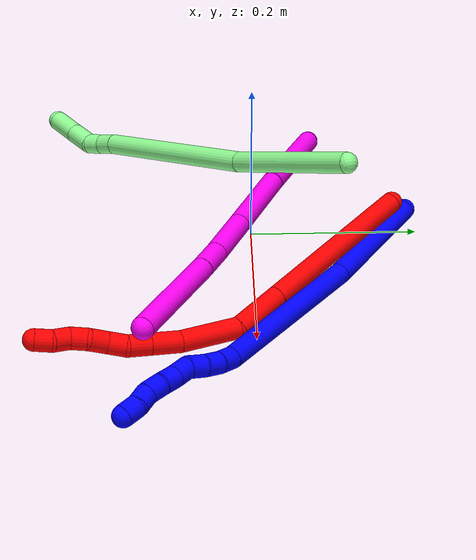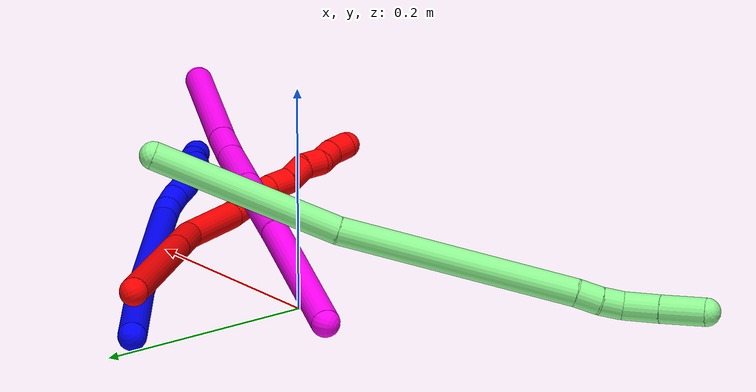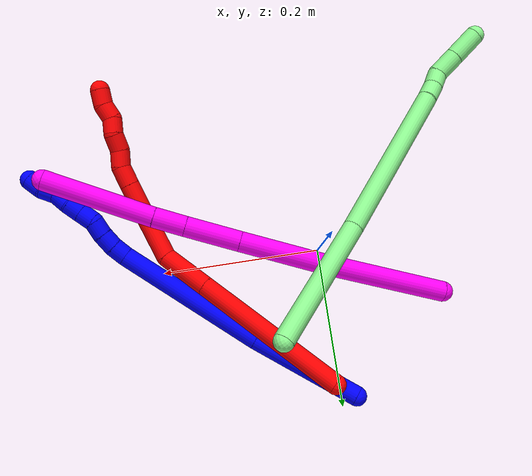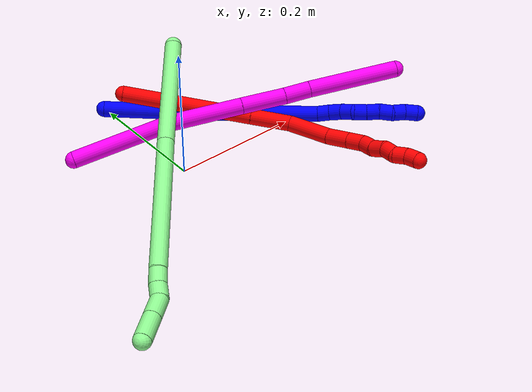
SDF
<sdf version="1.7">
 <world name="default">
  <model name="1">
   <static>0</static>
   <link name="1">
    <collision name="collision-cylinder-e_1_1_4">
     <pose>0.045166 -0.015565 0.052991 0.2857 0.68549 0.102555</pose>
     <geometry><cylinder><radius>0.0125</radius><length>0.142691</length></cylinder></geometry>
     <surface>
      <friction><ode><mu>1.16</mu><mu2>1.16</mu2><slip1>0</slip1><slip2>0</slip2></ode></friction>
      <contact><ode><kp>1e+06</kp><kd>1</kd><max_vel>0</max_vel><min_depth>0.001</min_depth></ode></contact>
     </surface>
    </collision>
    <visual name="visual-cylinder-e_1_1_4">
     <pose>0.045166 -0.015565 0.052991 0.2857 0.68549 0.102555</pose>
     <geometry><cylinder><radius>0.0125</radius><length>0.142691</length></cylinder></geometry>
     <material><ambient>0 0 1 1</ambient></material>
    </visual>
    <collision name="collision-cylinder-e_2_4_5">
     <pose>0.158016 -0.045309 0.176106 0.199503 0.75769 0.079639</pose>
     <geometry><cylinder><radius>0.0125</radius><length>0.196974</length></cylinder></geometry>
     <surface>
      <friction><ode><mu>1.16</mu><mu2>1.16</mu2><slip1>0</slip1><slip2>0</slip2></ode></friction>
      <contact><ode><kp>1e+06</kp><kd>1</kd><max_vel>0</max_vel><min_depth>0.001</min_depth></ode></contact>
     </surface>
    </collision>
    <visual name="visual-cylinder-e_2_4_5">
     <pose>0.158016 -0.045309 0.176106 0.199503 0.75769 0.079639</pose>
     <geometry><cylinder><radius>0.0125</radius><length>0.196974</length></cylinder></geometry>
     <material><ambient>0 0 1 1</ambient></material>
    </visual>
    <collision name="collision-cylinder-e_3_5_6">
     <pose>0.233965 -0.059517 0.252031 0.004991 0.958743 0.002594</pose>
     <geometry><cylinder><radius>0.0125</radius><length>0.020195</length></cylinder></geometry>
     <surface>
      <friction><ode><mu>1.16</mu><mu2>1.16</mu2><slip1>0</slip1><slip2>0</slip2></ode></friction>
      <contact><ode><kp>1e+06</kp><kd>1</kd><max_vel>0</max_vel><min_depth>0.001</min_depth></ode></contact>
     </surface>
    </collision>
    <visual name="visual-cylinder-e_3_5_6">
     <pose>0.233965 -0.059517 0.252031 0.004991 0.958743 0.002594</pose>
     <geometry><cylinder><radius>0.0125</radius><length>0.020195</length></cylinder></geometry>
     <material><ambient>0 0 1 1</ambient></material>
    </visual>
    <collision name="collision-cylinder-e_4_6_7">
     <pose>0.250354 -0.057813 0.263498 -0.296875 0.940717 -0.151763</pose>
     <geometry><cylinder><radius>0.0125</radius><length>0.020111</length></cylinder></geometry>
     <surface>
      <friction><ode><mu>1.16</mu><mu2>1.16</mu2><slip1>0</slip1><slip2>0</slip2></ode></friction>
      <contact><ode><kp>1e+06</kp><kd>1</kd><max_vel>0</max_vel><min_depth>0.001</min_depth></ode></contact>
     </surface>
    </collision>
    <visual name="visual-cylinder-e_4_6_7">
     <pose>0.250354 -0.057813 0.263498 -0.296875 0.940717 -0.151763</pose>
     <geometry><cylinder><radius>0.0125</radius><length>0.020111</length></cylinder></geometry>
     <material><ambient>0 0 1 1</ambient></material>
    </visual>
    <collision name="collision-cylinder-e_5_7_8">
     <pose>0.266189 -0.052908 0.274711 -0.519428 0.878803 -0.248512</pose>
     <geometry><cylinder><radius>0.0125</radius><length>0.020029</length></cylinder></geometry>
     <surface>
      <friction><ode><mu>1.16</mu><mu2>1.16</mu2><slip1>0</slip1><slip2>0</slip2></ode></friction>
      <contact><ode><kp>1e+06</kp><kd>1</kd><max_vel>0</max_vel><min_depth>0.001</min_depth></ode></contact>
     </surface>
    </collision>
    <visual name="visual-cylinder-e_5_7_8">
     <pose>0.266189 -0.052908 0.274711 -0.519428 0.878803 -0.248512</pose>
     <geometry><cylinder><radius>0.0125</radius><length>0.020029</length></cylinder></geometry>
     <material><ambient>0 0 1 1</ambient></material>
    </visual>
    <collision name="collision-cylinder-e_6_8_9">
     <pose>0.28076 -0.05088 0.287444 0.157911 0.755921 0.062809</pose>
     <geometry><cylinder><radius>0.0125</radius><length>0.02</length></cylinder></geometry>
     <surface>
      <friction><ode><mu>1.16</mu><mu2>1.16</mu2><slip1>0</slip1><slip2>0</slip2></ode></friction>
      <contact><ode><kp>1e+06</kp><kd>1</kd><max_vel>0</max_vel><min_depth>0.001</min_depth></ode></contact>
     </surface>
    </collision>
    <visual name="visual-cylinder-e_6_8_9">
     <pose>0.28076 -0.05088 0.287444 0.157911 0.755921 0.062809</pose>
     <geometry><cylinder><radius>0.0125</radius><length>0.02</length></cylinder></geometry>
     <material><ambient>0 0 1 1</ambient></material>
    </visual>
    <collision name="collision-cylinder-e_7_9_10">
     <pose>0.295263 -0.052781 0.301034 0.117565 0.869972 0.054678</pose>
     <geometry><cylinder><radius>0.0125</radius><length>0.02</length></cylinder></geometry>
     <surface>
      <friction><ode><mu>1.16</mu><mu2>1.16</mu2><slip1>0</slip1><slip2>0</slip2></ode></friction>
      <contact><ode><kp>1e+06</kp><kd>1</kd><max_vel>0</max_vel><min_depth>0.001</min_depth></ode></contact>
     </surface>
    </collision>
    <visual name="visual-cylinder-e_7_9_10">
     <pose>0.295263 -0.052781 0.301034 0.117565 0.869972 0.054678</pose>
     <geometry><cylinder><radius>0.0125</radius><length>0.02</length></cylinder></geometry>
     <material><ambient>0 0 1 1</ambient></material>
    </visual>
    <collision name="collision-cylinder-e_8_10_11">
     <pose>0.309321 -0.053836 0.315103 0.03903 0.696447 0.01417</pose>
     <geometry><cylinder><radius>0.0125</radius><length>0.02</length></cylinder></geometry>
     <surface>
      <friction><ode><mu>1.16</mu><mu2>1.16</mu2><slip1>0</slip1><slip2>0</slip2></ode></friction>
      <contact><ode><kp>1e+06</kp><kd>1</kd><max_vel>0</max_vel><min_depth>0.001</min_depth></ode></contact>
     </surface>
    </collision>
    <visual name="visual-cylinder-e_8_10_11">
     <pose>0.309321 -0.053836 0.315103 0.03903 0.696447 0.01417</pose>
     <geometry><cylinder><radius>0.0125</radius><length>0.02</length></cylinder></geometry>
     <material><ambient>0 0 1 1</ambient></material>
    </visual>
    <collision name="collision-cylinder-e_9_11_12">
     <pose>0.322276 -0.05781 0.329381 0.507198 0.712908 0.19242</pose>
     <geometry><cylinder><radius>0.0125</radius><length>0.02</length></cylinder></geometry>
     <surface>
      <friction><ode><mu>1.16</mu><mu2>1.16</mu2><slip1>0</slip1><slip2>0</slip2></ode></friction>
      <contact><ode><kp>1e+06</kp><kd>1</kd><max_vel>0</max_vel><min_depth>0.001</min_depth></ode></contact>
     </surface>
    </collision>
    <visual name="visual-cylinder-e_9_11_12">
     <pose>0.322276 -0.05781 0.329381 0.507198 0.712908 0.19242</pose>
     <geometry><cylinder><radius>0.0125</radius><length>0.02</length></cylinder></geometry>
     <material><ambient>0 0 1 1</ambient></material>
    </visual>
    <collision name="collision-cylinder-e_10_12_2">
     <pose>0.335222 -0.062353 0.343623 0.113301 0.695223 0.04109</pose>
     <geometry><cylinder><radius>0.0125</radius><length>0.02</length></cylinder></geometry>
     <surface>
      <friction><ode><mu>1.16</mu><mu2>1.16</mu2><slip1>0</slip1><slip2>0</slip2></ode></friction>
      <contact><ode><kp>1e+06</kp><kd>1</kd><max_vel>0</max_vel><min_depth>0.001</min_depth></ode></contact>
     </surface>
    </collision>
    <visual name="visual-cylinder-e_10_12_2">
     <pose>0.335222 -0.062353 0.343623 0.113301 0.695223 0.04109</pose>
     <geometry><cylinder><radius>0.0125</radius><length>0.02</length></cylinder></geometry>
     <material><ambient>0 0 1 1</ambient></material>
    </visual>
    <collision name="collision-sphere-2">
     <pose>0.341628 -0.063221 0.351253 0 -0 0</pose>
     <geometry><sphere><radius>0.0125</radius></sphere></geometry>
     <surface>
      <friction><ode><mu>1.16</mu><mu2>1.16</mu2><slip1>0</slip1><slip2>0</slip2></ode></friction>
      <contact><ode><kp>1e+06</kp><kd>1</kd><max_vel>0</max_vel><min_depth>0.001</min_depth></ode></contact>
     </surface>
    </collision>
    <visual name="visual-sphere-2">
     <pose>0.341628 -0.063221 0.351253 0 -0 0</pose>
     <geometry><sphere><radius>0.0125</radius></sphere></geometry>
     <material><ambient>0 0 1 1</ambient></material>
    </visual>
    <collision name="collision-sphere-12">
     <pose>0.328816 -0.061484 0.335993 0 -0 0</pose>
     <geometry><sphere><radius>0.0125</radius></sphere></geometry>
     <surface>
      <friction><ode><mu>1.16</mu><mu2>1.16</mu2><slip1>0</slip1><slip2>0</slip2></ode></friction>
      <contact><ode><kp>1e+06</kp><kd>1</kd><max_vel>0</max_vel><min_depth>0.001</min_depth></ode></contact>
     </surface>
    </collision>
    <visual name="visual-sphere-12">
     <pose>0.328816 -0.061484 0.335993 0 -0 0</pose>
     <geometry><sphere><radius>0.0125</radius></sphere></geometry>
     <material><ambient>0 0 1 1</ambient></material>
    </visual>
    <collision name="collision-sphere-11">
     <pose>0.315736 -0.054136 0.322769 0 -0 0</pose>
     <geometry><sphere><radius>0.0125</radius></sphere></geometry>
     <surface>
      <friction><ode><mu>1.16</mu><mu2>1.16</mu2><slip1>0</slip1><slip2>0</slip2></ode></friction>
      <contact><ode><kp>1e+06</kp><kd>1</kd><max_vel>0</max_vel><min_depth>0.001</min_depth></ode></contact>
     </surface>
    </collision>
    <visual name="visual-sphere-11">
     <pose>0.315736 -0.054136 0.322769 0 -0 0</pose>
     <geometry><sphere><radius>0.0125</radius></sphere></geometry>
     <material><ambient>0 0 1 1</ambient></material>
    </visual>
    <collision name="collision-sphere-10">
     <pose>0.302906 -0.053537 0.307438 0 -0 0</pose>
     <geometry><sphere><radius>0.0125</radius></sphere></geometry>
     <surface>
      <friction><ode><mu>1.16</mu><mu2>1.16</mu2><slip1>0</slip1><slip2>0</slip2></ode></friction>
      <contact><ode><kp>1e+06</kp><kd>1</kd><max_vel>0</max_vel><min_depth>0.001</min_depth></ode></contact>
     </surface>
    </collision>
    <visual name="visual-sphere-10">
     <pose>0.302906 -0.053537 0.307438 0 -0 0</pose>
     <geometry><sphere><radius>0.0125</radius></sphere></geometry>
     <material><ambient>0 0 1 1</ambient></material>
    </visual>
    <collision name="collision-sphere-9">
     <pose>0.287619 -0.052024 0.29463 0 -0 0</pose>
     <geometry><sphere><radius>0.0125</radius></sphere></geometry>
     <surface>
      <friction><ode><mu>1.16</mu><mu2>1.16</mu2><slip1>0</slip1><slip2>0</slip2></ode></friction>
      <contact><ode><kp>1e+06</kp><kd>1</kd><max_vel>0</max_vel><min_depth>0.001</min_depth></ode></contact>
     </surface>
    </collision>
    <visual name="visual-sphere-9">
     <pose>0.287619 -0.052024 0.29463 0 -0 0</pose>
     <geometry><sphere><radius>0.0125</radius></sphere></geometry>
     <material><ambient>0 0 1 1</ambient></material>
    </visual>
    <collision name="collision-sphere-4">
     <pose>0.090331 -0.03113 0.105981 0 -0 0</pose>
     <geometry><sphere><radius>0.0125</radius></sphere></geometry>
     <surface>
      <friction><ode><mu>1.16</mu><mu2>1.16</mu2><slip1>0</slip1><slip2>0</slip2></ode></friction>
      <contact><ode><kp>1e+06</kp><kd>1</kd><max_vel>0</max_vel><min_depth>0.001</min_depth></ode></contact>
     </surface>
    </collision>
    <visual name="visual-sphere-4">
     <pose>0.090331 -0.03113 0.105981 0 -0 0</pose>
     <geometry><sphere><radius>0.0125</radius></sphere></geometry>
     <material><ambient>0 0 1 1</ambient></material>
    </visual>
    <collision name="collision-sphere-1">
     <geometry><sphere><radius>0.0125</radius></sphere></geometry>
     <surface>
      <friction><ode><mu>1.16</mu><mu2>1.16</mu2><slip1>0</slip1><slip2>0</slip2></ode></friction>
      <contact><ode><kp>1e+06</kp><kd>1</kd><max_vel>0</max_vel><min_depth>0.001</min_depth></ode></contact>
     </surface>
    </collision>
    <visual name="visual-sphere-1">
     <geometry><sphere><radius>0.0125</radius></sphere></geometry>
     <material><ambient>0 0 1 1</ambient></material>
    </visual>
    <collision name="collision-sphere-8">
     <pose>0.2739 -0.049736 0.280258 0 -0 0</pose>
     <geometry><sphere><radius>0.0125</radius></sphere></geometry>
     <surface>
      <friction><ode><mu>1.16</mu><mu2>1.16</mu2><slip1>0</slip1><slip2>0</slip2></ode></friction>
      <contact><ode><kp>1e+06</kp><kd>1</kd><max_vel>0</max_vel><min_depth>0.001</min_depth></ode></contact>
     </surface>
    </collision>
    <visual name="visual-sphere-8">
     <pose>0.2739 -0.049736 0.280258 0 -0 0</pose>
     <geometry><sphere><radius>0.0125</radius></sphere></geometry>
     <material><ambient>0 0 1 1</ambient></material>
    </visual>
    <collision name="collision-sphere-5">
     <pose>0.225701 -0.059488 0.24623 0 -0 0</pose>
     <geometry><sphere><radius>0.0125</radius></sphere></geometry>
     <surface>
      <friction><ode><mu>1.16</mu><mu2>1.16</mu2><slip1>0</slip1><slip2>0</slip2></ode></friction>
      <contact><ode><kp>1e+06</kp><kd>1</kd><max_vel>0</max_vel><min_depth>0.001</min_depth></ode></contact>
     </surface>
    </collision>
    <visual name="visual-sphere-5">
     <pose>0.225701 -0.059488 0.24623 0 -0 0</pose>
     <geometry><sphere><radius>0.0125</radius></sphere></geometry>
     <material><ambient>0 0 1 1</ambient></material>
    </visual>
    <collision name="collision-sphere-6">
     <pose>0.24223 -0.059546 0.257833 0 -0 0</pose>
     <geometry><sphere><radius>0.0125</radius></sphere></geometry>
     <surface>
      <friction><ode><mu>1.16</mu><mu2>1.16</mu2><slip1>0</slip1><slip2>0</slip2></ode></friction>
      <contact><ode><kp>1e+06</kp><kd>1</kd><max_vel>0</max_vel><min_depth>0.001</min_depth></ode></contact>
     </surface>
    </collision>
    <visual name="visual-sphere-6">
     <pose>0.24223 -0.059546 0.257833 0 -0 0</pose>
     <geometry><sphere><radius>0.0125</radius></sphere></geometry>
     <material><ambient>0 0 1 1</ambient></material>
    </visual>
    <collision name="collision-sphere-7">
     <pose>0.258479 -0.056079 0.269164 0 -0 0</pose>
     <geometry><sphere><radius>0.0125</radius></sphere></geometry>
     <surface>
      <friction><ode><mu>1.16</mu><mu2>1.16</mu2><slip1>0</slip1><slip2>0</slip2></ode></friction>
      <contact><ode><kp>1e+06</kp><kd>1</kd><max_vel>0</max_vel><min_depth>0.001</min_depth></ode></contact>
     </surface>
    </collision>
    <visual name="visual-sphere-7">
     <pose>0.258479 -0.056079 0.269164 0 -0 0</pose>
     <geometry><sphere><radius>0.0125</radius></sphere></geometry>
     <material><ambient>0 0 1 1</ambient></material>
    </visual>
    <inertial>
     <pose>0.167036 -0.040246 0.179345 0 -0 0</pose>
     <mass>0.5</mass>
     <inertia>
      <ixx>0.000749</ixx>
      <ixy>0</ixy>
      <ixz>0</ixz>
      <iyy>0.000941</iyy>
      <iyz>0</iyz>
      <izz>-0.000434</izz>
     </inertia>
    </inertial>
   </link>
   <pose>-0.017171 0.187613 0.022142 2.81825 -0.810275 -0.626008</pose>
  </model>
  <model name="2">
   <static>0</static>
   <link name="2">
    <collision name="collision-cylinder-e_1_1_4">
     <pose>0.075591 -0.065773 0.015669 1.33692 0.841052 0.679008</pose>
     <geometry><cylinder><radius>0.0125</radius><length>0.202836</length></cylinder></geometry>
     <surface>
      <friction><ode><mu>1.16</mu><mu2>1.16</mu2><slip1>0</slip1><slip2>0</slip2></ode></friction>
      <contact><ode><kp>1e+06</kp><kd>1</kd><max_vel>0</max_vel><min_depth>0.001</min_depth></ode></contact>
     </surface>
    </collision>
    <visual name="visual-cylinder-e_1_1_4">
     <pose>0.075591 -0.065773 0.015669 1.33692 0.841052 0.679008</pose>
     <geometry><cylinder><radius>0.0125</radius><length>0.202836</length></cylinder></geometry>
     <material><ambient>1 0 0 1</ambient></material>
    </visual>
    <collision name="collision-cylinder-e_2_4_5">
     <pose>0.174928 -0.152079 0.036251 1.336 0.843997 0.680898</pose>
     <geometry><cylinder><radius>0.0125</radius><length>0.063547</length></cylinder></geometry>
     <surface>
      <friction><ode><mu>1.16</mu><mu2>1.16</mu2><slip1>0</slip1><slip2>0</slip2></ode></friction>
      <contact><ode><kp>1e+06</kp><kd>1</kd><max_vel>0</max_vel><min_depth>0.001</min_depth></ode></contact>
     </surface>
    </collision>
    <visual name="visual-cylinder-e_2_4_5">
     <pose>0.174928 -0.152079 0.036251 1.336 0.843997 0.680898</pose>
     <geometry><cylinder><radius>0.0125</radius><length>0.063547</length></cylinder></geometry>
     <material><ambient>1 0 0 1</ambient></material>
    </visual>
    <collision name="collision-cylinder-e_3_5_6">
     <pose>0.21856 -0.192362 0.060948 0.784487 0.618344 0.262749</pose>
     <geometry><cylinder><radius>0.0125</radius><length>0.068614</length></cylinder></geometry>
     <surface>
      <friction><ode><mu>1.16</mu><mu2>1.16</mu2><slip1>0</slip1><slip2>0</slip2></ode></friction>
      <contact><ode><kp>1e+06</kp><kd>1</kd><max_vel>0</max_vel><min_depth>0.001</min_depth></ode></contact>
     </surface>
    </collision>
    <visual name="visual-cylinder-e_3_5_6">
     <pose>0.21856 -0.192362 0.060948 0.784487 0.618344 0.262749</pose>
     <geometry><cylinder><radius>0.0125</radius><length>0.068614</length></cylinder></geometry>
     <material><ambient>1 0 0 1</ambient></material>
    </visual>
    <collision name="collision-cylinder-e_4_6_7">
     <pose>0.249601 -0.219854 0.09238 0.586743 0.673185 0.210624</pose>
     <geometry><cylinder><radius>0.0125</radius><length>0.035779</length></cylinder></geometry>
     <surface>
      <friction><ode><mu>1.16</mu><mu2>1.16</mu2><slip1>0</slip1><slip2>0</slip2></ode></friction>
      <contact><ode><kp>1e+06</kp><kd>1</kd><max_vel>0</max_vel><min_depth>0.001</min_depth></ode></contact>
     </surface>
    </collision>
    <visual name="visual-cylinder-e_4_6_7">
     <pose>0.249601 -0.219854 0.09238 0.586743 0.673185 0.210624</pose>
     <geometry><cylinder><radius>0.0125</radius><length>0.035779</length></cylinder></geometry>
     <material><ambient>1 0 0 1</ambient></material>
    </visual>
    <collision name="collision-cylinder-e_5_7_8">
     <pose>0.268628 -0.233057 0.112299 0.583307 0.671339 0.208712</pose>
     <geometry><cylinder><radius>0.0125</radius><length>0.025314</length></cylinder></geometry>
     <surface>
      <friction><ode><mu>1.16</mu><mu2>1.16</mu2><slip1>0</slip1><slip2>0</slip2></ode></friction>
      <contact><ode><kp>1e+06</kp><kd>1</kd><max_vel>0</max_vel><min_depth>0.001</min_depth></ode></contact>
     </surface>
    </collision>
    <visual name="visual-cylinder-e_5_7_8">
     <pose>0.268628 -0.233057 0.112299 0.583307 0.671339 0.208712</pose>
     <geometry><cylinder><radius>0.0125</radius><length>0.025314</length></cylinder></geometry>
     <material><ambient>1 0 0 1</ambient></material>
    </visual>
    <collision name="collision-cylinder-e_6_8_9">
     <pose>0.27991 -0.242569 0.130148 0.400454 0.31675 0.064803</pose>
     <geometry><cylinder><radius>0.0125</radius><length>0.021889</length></cylinder></geometry>
     <surface>
      <friction><ode><mu>1.16</mu><mu2>1.16</mu2><slip1>0</slip1><slip2>0</slip2></ode></friction>
      <contact><ode><kp>1e+06</kp><kd>1</kd><max_vel>0</max_vel><min_depth>0.001</min_depth></ode></contact>
     </surface>
    </collision>
    <visual name="visual-cylinder-e_6_8_9">
     <pose>0.27991 -0.242569 0.130148 0.400454 0.31675 0.064803</pose>
     <geometry><cylinder><radius>0.0125</radius><length>0.021889</length></cylinder></geometry>
     <material><ambient>1 0 0 1</ambient></material>
    </visual>
    <collision name="collision-cylinder-e_7_9_10">
     <pose>0.2901 -0.24893 0.148033 0.270782 0.666492 0.09424</pose>
     <geometry><cylinder><radius>0.0125</radius><length>0.021938</length></cylinder></geometry>
     <surface>
      <friction><ode><mu>1.16</mu><mu2>1.16</mu2><slip1>0</slip1><slip2>0</slip2></ode></friction>
      <contact><ode><kp>1e+06</kp><kd>1</kd><max_vel>0</max_vel><min_depth>0.001</min_depth></ode></contact>
     </surface>
    </collision>
    <visual name="visual-cylinder-e_7_9_10">
     <pose>0.2901 -0.24893 0.148033 0.270782 0.666492 0.09424</pose>
     <geometry><cylinder><radius>0.0125</radius><length>0.021938</length></cylinder></geometry>
     <material><ambient>1 0 0 1</ambient></material>
    </visual>
    <collision name="collision-cylinder-e_8_10_11">
     <pose>0.299851 -0.255943 0.16466 0.514791 0.301192 0.079846</pose>
     <geometry><cylinder><radius>0.0125</radius><length>0.02002</length></cylinder></geometry>
     <surface>
      <friction><ode><mu>1.16</mu><mu2>1.16</mu2><slip1>0</slip1><slip2>0</slip2></ode></friction>
      <contact><ode><kp>1e+06</kp><kd>1</kd><max_vel>0</max_vel><min_depth>0.001</min_depth></ode></contact>
     </surface>
    </collision>
    <visual name="visual-cylinder-e_8_10_11">
     <pose>0.299851 -0.255943 0.16466 0.514791 0.301192 0.079846</pose>
     <geometry><cylinder><radius>0.0125</radius><length>0.02002</length></cylinder></geometry>
     <material><ambient>1 0 0 1</ambient></material>
    </visual>
    <collision name="collision-cylinder-e_9_11_12">
     <pose>0.309927 -0.264933 0.178573 0.65372 0.789804 0.280746</pose>
     <geometry><cylinder><radius>0.0125</radius><length>0.020014</length></cylinder></geometry>
     <surface>
      <friction><ode><mu>1.16</mu><mu2>1.16</mu2><slip1>0</slip1><slip2>0</slip2></ode></friction>
      <contact><ode><kp>1e+06</kp><kd>1</kd><max_vel>0</max_vel><min_depth>0.001</min_depth></ode></contact>
     </surface>
    </collision>
    <visual name="visual-cylinder-e_9_11_12">
     <pose>0.309927 -0.264933 0.178573 0.65372 0.789804 0.280746</pose>
     <geometry><cylinder><radius>0.0125</radius><length>0.020014</length></cylinder></geometry>
     <material><ambient>1 0 0 1</ambient></material>
    </visual>
    <collision name="collision-cylinder-e_10_12_2">
     <pose>0.321445 -0.273405 0.192134 0.483861 0.455605 0.114288</pose>
     <geometry><cylinder><radius>0.0125</radius><length>0.020049</length></cylinder></geometry>
     <surface>
      <friction><ode><mu>1.16</mu><mu2>1.16</mu2><slip1>0</slip1><slip2>0</slip2></ode></friction>
      <contact><ode><kp>1e+06</kp><kd>1</kd><max_vel>0</max_vel><min_depth>0.001</min_depth></ode></contact>
     </surface>
    </collision>
    <visual name="visual-cylinder-e_10_12_2">
     <pose>0.321445 -0.273405 0.192134 0.483861 0.455605 0.114288</pose>
     <geometry><cylinder><radius>0.0125</radius><length>0.020049</length></cylinder></geometry>
     <material><ambient>1 0 0 1</ambient></material>
    </visual>
    <collision name="collision-sphere-2">
     <pose>0.325856 -0.277593 0.200102 0 -0 0</pose>
     <geometry><sphere><radius>0.0125</radius></sphere></geometry>
     <surface>
      <friction><ode><mu>1.16</mu><mu2>1.16</mu2><slip1>0</slip1><slip2>0</slip2></ode></friction>
      <contact><ode><kp>1e+06</kp><kd>1</kd><max_vel>0</max_vel><min_depth>0.001</min_depth></ode></contact>
     </surface>
    </collision>
    <visual name="visual-sphere-2">
     <pose>0.325856 -0.277593 0.200102 0 -0 0</pose>
     <geometry><sphere><radius>0.0125</radius></sphere></geometry>
     <material><ambient>1 0 0 1</ambient></material>
    </visual>
    <collision name="collision-sphere-12">
     <pose>0.317034 -0.269218 0.184165 0 -0 0</pose>
     <geometry><sphere><radius>0.0125</radius></sphere></geometry>
     <surface>
      <friction><ode><mu>1.16</mu><mu2>1.16</mu2><slip1>0</slip1><slip2>0</slip2></ode></friction>
      <contact><ode><kp>1e+06</kp><kd>1</kd><max_vel>0</max_vel><min_depth>0.001</min_depth></ode></contact>
     </surface>
    </collision>
    <visual name="visual-sphere-12">
     <pose>0.317034 -0.269218 0.184165 0 -0 0</pose>
     <geometry><sphere><radius>0.0125</radius></sphere></geometry>
     <material><ambient>1 0 0 1</ambient></material>
    </visual>
    <collision name="collision-sphere-11">
     <pose>0.30282 -0.260649 0.172981 0 -0 0</pose>
     <geometry><sphere><radius>0.0125</radius></sphere></geometry>
     <surface>
      <friction><ode><mu>1.16</mu><mu2>1.16</mu2><slip1>0</slip1><slip2>0</slip2></ode></friction>
      <contact><ode><kp>1e+06</kp><kd>1</kd><max_vel>0</max_vel><min_depth>0.001</min_depth></ode></contact>
     </surface>
    </collision>
    <visual name="visual-sphere-11">
     <pose>0.30282 -0.260649 0.172981 0 -0 0</pose>
     <geometry><sphere><radius>0.0125</radius></sphere></geometry>
     <material><ambient>1 0 0 1</ambient></material>
    </visual>
    <collision name="collision-sphere-10">
     <pose>0.296881 -0.251236 0.15634 0 -0 0</pose>
     <geometry><sphere><radius>0.0125</radius></sphere></geometry>
     <surface>
      <friction><ode><mu>1.16</mu><mu2>1.16</mu2><slip1>0</slip1><slip2>0</slip2></ode></friction>
      <contact><ode><kp>1e+06</kp><kd>1</kd><max_vel>0</max_vel><min_depth>0.001</min_depth></ode></contact>
     </surface>
    </collision>
    <visual name="visual-sphere-10">
     <pose>0.296881 -0.251236 0.15634 0 -0 0</pose>
     <geometry><sphere><radius>0.0125</radius></sphere></geometry>
     <material><ambient>1 0 0 1</ambient></material>
    </visual>
    <collision name="collision-sphere-9">
     <pose>0.283319 -0.246624 0.139725 0 -0 0</pose>
     <geometry><sphere><radius>0.0125</radius></sphere></geometry>
     <surface>
      <friction><ode><mu>1.16</mu><mu2>1.16</mu2><slip1>0</slip1><slip2>0</slip2></ode></friction>
      <contact><ode><kp>1e+06</kp><kd>1</kd><max_vel>0</max_vel><min_depth>0.001</min_depth></ode></contact>
     </surface>
    </collision>
    <visual name="visual-sphere-9">
     <pose>0.283319 -0.246624 0.139725 0 -0 0</pose>
     <geometry><sphere><radius>0.0125</radius></sphere></geometry>
     <material><ambient>1 0 0 1</ambient></material>
    </visual>
    <collision name="collision-sphere-4">
     <pose>0.151183 -0.131545 0.031339 0 -0 0</pose>
     <geometry><sphere><radius>0.0125</radius></sphere></geometry>
     <surface>
      <friction><ode><mu>1.16</mu><mu2>1.16</mu2><slip1>0</slip1><slip2>0</slip2></ode></friction>
      <contact><ode><kp>1e+06</kp><kd>1</kd><max_vel>0</max_vel><min_depth>0.001</min_depth></ode></contact>
     </surface>
    </collision>
    <visual name="visual-sphere-4">
     <pose>0.151183 -0.131545 0.031339 0 -0 0</pose>
     <geometry><sphere><radius>0.0125</radius></sphere></geometry>
     <material><ambient>1 0 0 1</ambient></material>
    </visual>
    <collision name="collision-sphere-1">
     <geometry><sphere><radius>0.0125</radius></sphere></geometry>
     <surface>
      <friction><ode><mu>1.16</mu><mu2>1.16</mu2><slip1>0</slip1><slip2>0</slip2></ode></friction>
      <contact><ode><kp>1e+06</kp><kd>1</kd><max_vel>0</max_vel><min_depth>0.001</min_depth></ode></contact>
     </surface>
    </collision>
    <visual name="visual-sphere-1">
     <geometry><sphere><radius>0.0125</radius></sphere></geometry>
     <material><ambient>1 0 0 1</ambient></material>
    </visual>
    <collision name="collision-sphere-8">
     <pose>0.276501 -0.238515 0.12057 0 -0 0</pose>
     <geometry><sphere><radius>0.0125</radius></sphere></geometry>
     <surface>
      <friction><ode><mu>1.16</mu><mu2>1.16</mu2><slip1>0</slip1><slip2>0</slip2></ode></friction>
      <contact><ode><kp>1e+06</kp><kd>1</kd><max_vel>0</max_vel><min_depth>0.001</min_depth></ode></contact>
     </surface>
    </collision>
    <visual name="visual-sphere-8">
     <pose>0.276501 -0.238515 0.12057 0 -0 0</pose>
     <geometry><sphere><radius>0.0125</radius></sphere></geometry>
     <material><ambient>1 0 0 1</ambient></material>
    </visual>
    <collision name="collision-sphere-5">
     <pose>0.198672 -0.172613 0.041163 0 -0 0</pose>
     <geometry><sphere><radius>0.0125</radius></sphere></geometry>
     <surface>
      <friction><ode><mu>1.16</mu><mu2>1.16</mu2><slip1>0</slip1><slip2>0</slip2></ode></friction>
      <contact><ode><kp>1e+06</kp><kd>1</kd><max_vel>0</max_vel><min_depth>0.001</min_depth></ode></contact>
     </surface>
    </collision>
    <visual name="visual-sphere-5">
     <pose>0.198672 -0.172613 0.041163 0 -0 0</pose>
     <geometry><sphere><radius>0.0125</radius></sphere></geometry>
     <material><ambient>1 0 0 1</ambient></material>
    </visual>
    <collision name="collision-sphere-6">
     <pose>0.238447 -0.212111 0.080733 0 -0 0</pose>
     <geometry><sphere><radius>0.0125</radius></sphere></geometry>
     <surface>
      <friction><ode><mu>1.16</mu><mu2>1.16</mu2><slip1>0</slip1><slip2>0</slip2></ode></friction>
      <contact><ode><kp>1e+06</kp><kd>1</kd><max_vel>0</max_vel><min_depth>0.001</min_depth></ode></contact>
     </surface>
    </collision>
    <visual name="visual-sphere-6">
     <pose>0.238447 -0.212111 0.080733 0 -0 0</pose>
     <geometry><sphere><radius>0.0125</radius></sphere></geometry>
     <material><ambient>1 0 0 1</ambient></material>
    </visual>
    <collision name="collision-sphere-7">
     <pose>0.260754 -0.227598 0.104027 0 -0 0</pose>
     <geometry><sphere><radius>0.0125</radius></sphere></geometry>
     <surface>
      <friction><ode><mu>1.16</mu><mu2>1.16</mu2><slip1>0</slip1><slip2>0</slip2></ode></friction>
      <contact><ode><kp>1e+06</kp><kd>1</kd><max_vel>0</max_vel><min_depth>0.001</min_depth></ode></contact>
     </surface>
    </collision>
    <visual name="visual-sphere-7">
     <pose>0.260754 -0.227598 0.104027 0 -0 0</pose>
     <geometry><sphere><radius>0.0125</radius></sphere></geometry>
     <material><ambient>1 0 0 1</ambient></material>
    </visual>
    <inertial>
     <pose>0.176634 -0.153296 0.065261 0 -0 0</pose>
     <mass>0.5</mass>
     <inertia>
      <ixx>0.000751</ixx>
      <ixy>0</ixy>
      <ixz>0</ixz>
      <iyy>0.000791</iyy>
      <iyz>0</iyz>
      <izz>-5.7e-05</izz>
     </inertia>
    </inertial>
   </link>
   <pose>0.008252 0.167828 0.050389 1.13427 -0.449467 -0.360962</pose>
  </model>
  <model name="10">
   <static>0</static>
   <link name="10">
    <collision name="collision-cylinder-e_1_1_4">
     <pose>0.051419 0.005862 0.055477 -0.105281 0.744685 -0.041151</pose>
     <geometry><cylinder><radius>0.0125</radius><length>0.151735</length></cylinder></geometry>
     <surface>
      <friction><ode><mu>1.16</mu><mu2>1.16</mu2><slip1>0</slip1><slip2>0</slip2></ode></friction>
      <contact><ode><kp>1e+06</kp><kd>1</kd><max_vel>0</max_vel><min_depth>0.001</min_depth></ode></contact>
     </surface>
    </collision>
    <visual name="visual-cylinder-e_1_1_4">
     <pose>0.051419 0.005862 0.055477 -0.105281 0.744685 -0.041151</pose>
     <geometry><cylinder><radius>0.0125</radius><length>0.151735</length></cylinder></geometry>
     <material><ambient>1 0 0.964706 1</ambient></material>
    </visual>
    <collision name="collision-cylinder-e_2_4_5">
     <pose>0.139607 0.022602 0.148041 -0.285295 0.760472 -0.114683</pose>
     <geometry><cylinder><radius>0.0125</radius><length>0.106693</length></cylinder></geometry>
     <surface>
      <friction><ode><mu>1.16</mu><mu2>1.16</mu2><slip1>0</slip1><slip2>0</slip2></ode></friction>
      <contact><ode><kp>1e+06</kp><kd>1</kd><max_vel>0</max_vel><min_depth>0.001</min_depth></ode></contact>
     </surface>
    </collision>
    <visual name="visual-cylinder-e_2_4_5">
     <pose>0.139607 0.022602 0.148041 -0.285295 0.760472 -0.114683</pose>
     <geometry><cylinder><radius>0.0125</radius><length>0.106693</length></cylinder></geometry>
     <material><ambient>1 0 0.964706 1</ambient></material>
    </visual>
    <collision name="collision-cylinder-e_3_5_6">
     <pose>0.199641 0.040433 0.208251 -0.292115 0.766833 -0.118539</pose>
     <geometry><cylinder><radius>0.0125</radius><length>0.067058</length></cylinder></geometry>
     <surface>
      <friction><ode><mu>1.16</mu><mu2>1.16</mu2><slip1>0</slip1><slip2>0</slip2></ode></friction>
      <contact><ode><kp>1e+06</kp><kd>1</kd><max_vel>0</max_vel><min_depth>0.001</min_depth></ode></contact>
     </surface>
    </collision>
    <visual name="visual-cylinder-e_3_5_6">
     <pose>0.199641 0.040433 0.208251 -0.292115 0.766833 -0.118539</pose>
     <geometry><cylinder><radius>0.0125</radius><length>0.067058</length></cylinder></geometry>
     <material><ambient>1 0 0.964706 1</ambient></material>
    </visual>
    <collision name="collision-cylinder-e_4_6_7">
     <pose>0.236749 0.050439 0.244802 -0.223488 0.787977 -0.093231</pose>
     <geometry><cylinder><radius>0.0125</radius><length>0.039053</length></cylinder></geometry>
     <surface>
      <friction><ode><mu>1.16</mu><mu2>1.16</mu2><slip1>0</slip1><slip2>0</slip2></ode></friction>
      <contact><ode><kp>1e+06</kp><kd>1</kd><max_vel>0</max_vel><min_depth>0.001</min_depth></ode></contact>
     </surface>
    </collision>
    <visual name="visual-cylinder-e_4_6_7">
     <pose>0.236749 0.050439 0.244802 -0.223488 0.787977 -0.093231</pose>
     <geometry><cylinder><radius>0.0125</radius><length>0.039053</length></cylinder></geometry>
     <material><ambient>1 0 0.964706 1</ambient></material>
    </visual>
    <collision name="collision-cylinder-e_5_7_2">
     <pose>0.300439 0.065119 0.302587 -0.256396 0.827096 -0.113021</pose>
     <geometry><cylinder><radius>0.0125</radius><length>0.13546</length></cylinder></geometry>
     <surface>
      <friction><ode><mu>1.16</mu><mu2>1.16</mu2><slip1>0</slip1><slip2>0</slip2></ode></friction>
      <contact><ode><kp>1e+06</kp><kd>1</kd><max_vel>0</max_vel><min_depth>0.001</min_depth></ode></contact>
     </surface>
    </collision>
    <visual name="visual-cylinder-e_5_7_2">
     <pose>0.300439 0.065119 0.302587 -0.256396 0.827096 -0.113021</pose>
     <geometry><cylinder><radius>0.0125</radius><length>0.13546</length></cylinder></geometry>
     <material><ambient>1 0 0.964706 1</ambient></material>
    </visual>
    <collision name="collision-sphere-2">
     <pose>0.350286 0.076748 0.346942 0 -0 0</pose>
     <geometry><sphere><radius>0.0125</radius></sphere></geometry>
     <surface>
      <friction><ode><mu>1.16</mu><mu2>1.16</mu2><slip1>0</slip1><slip2>0</slip2></ode></friction>
      <contact><ode><kp>1e+06</kp><kd>1</kd><max_vel>0</max_vel><min_depth>0.001</min_depth></ode></contact>
     </surface>
    </collision>
    <visual name="visual-sphere-2">
     <pose>0.350286 0.076748 0.346942 0 -0 0</pose>
     <geometry><sphere><radius>0.0125</radius></sphere></geometry>
     <material><ambient>1 0 0.964706 1</ambient></material>
    </visual>
    <collision name="collision-sphere-7">
     <pose>0.250591 0.053491 0.258231 0 -0 0</pose>
     <geometry><sphere><radius>0.0125</radius></sphere></geometry>
     <surface>
      <friction><ode><mu>1.16</mu><mu2>1.16</mu2><slip1>0</slip1><slip2>0</slip2></ode></friction>
      <contact><ode><kp>1e+06</kp><kd>1</kd><max_vel>0</max_vel><min_depth>0.001</min_depth></ode></contact>
     </surface>
    </collision>
    <visual name="visual-sphere-7">
     <pose>0.250591 0.053491 0.258231 0 -0 0</pose>
     <geometry><sphere><radius>0.0125</radius></sphere></geometry>
     <material><ambient>1 0 0.964706 1</ambient></material>
    </visual>
    <collision name="collision-sphere-6">
     <pose>0.222906 0.047386 0.231373 0 -0 0</pose>
     <geometry><sphere><radius>0.0125</radius></sphere></geometry>
     <surface>
      <friction><ode><mu>1.16</mu><mu2>1.16</mu2><slip1>0</slip1><slip2>0</slip2></ode></friction>
      <contact><ode><kp>1e+06</kp><kd>1</kd><max_vel>0</max_vel><min_depth>0.001</min_depth></ode></contact>
     </surface>
    </collision>
    <visual name="visual-sphere-6">
     <pose>0.222906 0.047386 0.231373 0 -0 0</pose>
     <geometry><sphere><radius>0.0125</radius></sphere></geometry>
     <material><ambient>1 0 0.964706 1</ambient></material>
    </visual>
    <collision name="collision-sphere-5">
     <pose>0.176377 0.03348 0.185129 0 -0 0</pose>
     <geometry><sphere><radius>0.0125</radius></sphere></geometry>
     <surface>
      <friction><ode><mu>1.16</mu><mu2>1.16</mu2><slip1>0</slip1><slip2>0</slip2></ode></friction>
      <contact><ode><kp>1e+06</kp><kd>1</kd><max_vel>0</max_vel><min_depth>0.001</min_depth></ode></contact>
     </surface>
    </collision>
    <visual name="visual-sphere-5">
     <pose>0.176377 0.03348 0.185129 0 -0 0</pose>
     <geometry><sphere><radius>0.0125</radius></sphere></geometry>
     <material><ambient>1 0 0.964706 1</ambient></material>
    </visual>
    <collision name="collision-sphere-1">
     <geometry><sphere><radius>0.0125</radius></sphere></geometry>
     <surface>
      <friction><ode><mu>1.16</mu><mu2>1.16</mu2><slip1>0</slip1><slip2>0</slip2></ode></friction>
      <contact><ode><kp>1e+06</kp><kd>1</kd><max_vel>0</max_vel><min_depth>0.001</min_depth></ode></contact>
     </surface>
    </collision>
    <visual name="visual-sphere-1">
     <geometry><sphere><radius>0.0125</radius></sphere></geometry>
     <material><ambient>1 0 0.964706 1</ambient></material>
    </visual>
    <collision name="collision-sphere-4">
     <pose>0.102837 0.011725 0.110954 0 -0 0</pose>
     <geometry><sphere><radius>0.0125</radius></sphere></geometry>
     <surface>
      <friction><ode><mu>1.16</mu><mu2>1.16</mu2><slip1>0</slip1><slip2>0</slip2></ode></friction>
      <contact><ode><kp>1e+06</kp><kd>1</kd><max_vel>0</max_vel><min_depth>0.001</min_depth></ode></contact>
     </surface>
    </collision>
    <visual name="visual-sphere-4">
     <pose>0.102837 0.011725 0.110954 0 -0 0</pose>
     <geometry><sphere><radius>0.0125</radius></sphere></geometry>
     <material><ambient>1 0 0.964706 1</ambient></material>
    </visual>
    <inertial>
     <pose>0.172056 0.033607 0.177453 0 -0 0</pose>
     <mass>0.5</mass>
     <inertia>
      <ixx>0.000452</ixx>
      <ixy>0</ixy>
      <ixz>0</ixz>
      <iyy>0.00061</iyy>
      <iyz>0</iyz>
      <izz>-0.000515</izz>
     </inertia>
    </inertial>
   </link>
   <pose>-0.139776 0.076717 0.044705 -1.44004 -0.279329 -1.20662</pose>
  </model>
  <model name="13">
   <static>0</static>
   <link name="13">
    <collision name="collision-cylinder-e_1_1_4">
     <pose>-0.057307 -0.049759 0.039636 0.898158 -0.733271 -0.365972</pose>
     <geometry><cylinder><radius>0.0125</radius><length>0.171244</length></cylinder></geometry>
     <surface>
      <friction><ode><mu>1.16</mu><mu2>1.16</mu2><slip1>0</slip1><slip2>0</slip2></ode></friction>
      <contact><ode><kp>1e+06</kp><kd>1</kd><max_vel>0</max_vel><min_depth>0.001</min_depth></ode></contact>
     </surface>
    </collision>
    <visual name="visual-cylinder-e_1_1_4">
     <pose>-0.057307 -0.049759 0.039636 0.898158 -0.733271 -0.365972</pose>
     <geometry><cylinder><radius>0.0125</radius><length>0.171244</length></cylinder></geometry>
     <material><ambient>0.564706 0.984314 0.572549 1</ambient></material>
    </visual>
    <collision name="collision-cylinder-e_2_4_5">
     <pose>-0.175479 -0.164486 0.137139 0.843141 -0.610447 -0.280732</pose>
     <geometry><cylinder><radius>0.0125</radius><length>0.212356</length></cylinder></geometry>
     <surface>
      <friction><ode><mu>1.16</mu><mu2>1.16</mu2><slip1>0</slip1><slip2>0</slip2></ode></friction>
      <contact><ode><kp>1e+06</kp><kd>1</kd><max_vel>0</max_vel><min_depth>0.001</min_depth></ode></contact>
     </surface>
    </collision>
    <visual name="visual-cylinder-e_2_4_5">
     <pose>-0.175479 -0.164486 0.137139 0.843141 -0.610447 -0.280732</pose>
     <geometry><cylinder><radius>0.0125</radius><length>0.212356</length></cylinder></geometry>
     <material><ambient>0.564706 0.984314 0.572549 1</ambient></material>
    </visual>
    <collision name="collision-cylinder-e_3_5_6">
     <pose>-0.24318 -0.236514 0.20012 0.943941 -0.664909 -0.348901</pose>
     <geometry><cylinder><radius>0.0125</radius><length>0.022158</length></cylinder></geometry>
     <surface>
      <friction><ode><mu>1.16</mu><mu2>1.16</mu2><slip1>0</slip1><slip2>0</slip2></ode></friction>
      <contact><ode><kp>1e+06</kp><kd>1</kd><max_vel>0</max_vel><min_depth>0.001</min_depth></ode></contact>
     </surface>
    </collision>
    <visual name="visual-cylinder-e_3_5_6">
     <pose>-0.24318 -0.236514 0.20012 0.943941 -0.664909 -0.348901</pose>
     <geometry><cylinder><radius>0.0125</radius><length>0.022158</length></cylinder></geometry>
     <material><ambient>0.564706 0.984314 0.572549 1</ambient></material>
    </visual>
    <collision name="collision-cylinder-e_4_6_7">
     <pose>-0.255234 -0.251109 0.210081 0.999098 -0.527488 -0.292619</pose>
     <geometry><cylinder><radius>0.0125</radius><length>0.020734</length></cylinder></geometry>
     <surface>
      <friction><ode><mu>1.16</mu><mu2>1.16</mu2><slip1>0</slip1><slip2>0</slip2></ode></friction>
      <contact><ode><kp>1e+06</kp><kd>1</kd><max_vel>0</max_vel><min_depth>0.001</min_depth></ode></contact>
     </surface>
    </collision>
    <visual name="visual-cylinder-e_4_6_7">
     <pose>-0.255234 -0.251109 0.210081 0.999098 -0.527488 -0.292619</pose>
     <geometry><cylinder><radius>0.0125</radius><length>0.020734</length></cylinder></geometry>
     <material><ambient>0.564706 0.984314 0.572549 1</ambient></material>
    </visual>
    <collision name="collision-cylinder-e_5_7_8">
     <pose>-0.268138 -0.265396 0.228089 0.474115 -0.479166 -0.117897</pose>
     <geometry><cylinder><radius>0.0125</radius><length>0.033341</length></cylinder></geometry>
     <surface>
      <friction><ode><mu>1.16</mu><mu2>1.16</mu2><slip1>0</slip1><slip2>0</slip2></ode></friction>
      <contact><ode><kp>1e+06</kp><kd>1</kd><max_vel>0</max_vel><min_depth>0.001</min_depth></ode></contact>
     </surface>
    </collision>
    <visual name="visual-cylinder-e_5_7_8">
     <pose>-0.268138 -0.265396 0.228089 0.474115 -0.479166 -0.117897</pose>
     <geometry><cylinder><radius>0.0125</radius><length>0.033341</length></cylinder></geometry>
     <material><ambient>0.564706 0.984314 0.572549 1</ambient></material>
    </visual>
    <collision name="collision-cylinder-e_6_8_2">
     <pose>-0.284709 -0.280345 0.257289 0.472385 -0.458316 -0.112164</pose>
     <geometry><cylinder><radius>0.0125</radius><length>0.040167</length></cylinder></geometry>
     <surface>
      <friction><ode><mu>1.16</mu><mu2>1.16</mu2><slip1>0</slip1><slip2>0</slip2></ode></friction>
      <contact><ode><kp>1e+06</kp><kd>1</kd><max_vel>0</max_vel><min_depth>0.001</min_depth></ode></contact>
     </surface>
    </collision>
    <visual name="visual-cylinder-e_6_8_2">
     <pose>-0.284709 -0.280345 0.257289 0.472385 -0.458316 -0.112164</pose>
     <geometry><cylinder><radius>0.0125</radius><length>0.040167</length></cylinder></geometry>
     <material><ambient>0.564706 0.984314 0.572549 1</ambient></material>
    </visual>
    <collision name="collision-sphere-2">
     <pose>-0.293595 -0.28854 0.273327 0 -0 0</pose>
     <geometry><sphere><radius>0.0125</radius></sphere></geometry>
     <surface>
      <friction><ode><mu>1.16</mu><mu2>1.16</mu2><slip1>0</slip1><slip2>0</slip2></ode></friction>
      <contact><ode><kp>1e+06</kp><kd>1</kd><max_vel>0</max_vel><min_depth>0.001</min_depth></ode></contact>
     </surface>
    </collision>
    <visual name="visual-sphere-2">
     <pose>-0.293595 -0.28854 0.273327 0 -0 0</pose>
     <geometry><sphere><radius>0.0125</radius></sphere></geometry>
     <material><ambient>0.564706 0.984314 0.572549 1</ambient></material>
    </visual>
    <collision name="collision-sphere-4">
     <pose>-0.114614 -0.099519 0.079272 0 -0 0</pose>
     <geometry><sphere><radius>0.0125</radius></sphere></geometry>
     <surface>
      <friction><ode><mu>1.16</mu><mu2>1.16</mu2><slip1>0</slip1><slip2>0</slip2></ode></friction>
      <contact><ode><kp>1e+06</kp><kd>1</kd><max_vel>0</max_vel><min_depth>0.001</min_depth></ode></contact>
     </surface>
    </collision>
    <visual name="visual-sphere-4">
     <pose>-0.114614 -0.099519 0.079272 0 -0 0</pose>
     <geometry><sphere><radius>0.0125</radius></sphere></geometry>
     <material><ambient>0.564706 0.984314 0.572549 1</ambient></material>
    </visual>
    <collision name="collision-sphere-1">
     <geometry><sphere><radius>0.0125</radius></sphere></geometry>
     <surface>
      <friction><ode><mu>1.16</mu><mu2>1.16</mu2><slip1>0</slip1><slip2>0</slip2></ode></friction>
      <contact><ode><kp>1e+06</kp><kd>1</kd><max_vel>0</max_vel><min_depth>0.001</min_depth></ode></contact>
     </surface>
    </collision>
    <visual name="visual-sphere-1">
     <geometry><sphere><radius>0.0125</radius></sphere></geometry>
     <material><ambient>0.564706 0.984314 0.572549 1</ambient></material>
    </visual>
    <collision name="collision-sphere-8">
     <pose>-0.275823 -0.27215 0.24125 0 -0 0</pose>
     <geometry><sphere><radius>0.0125</radius></sphere></geometry>
     <surface>
      <friction><ode><mu>1.16</mu><mu2>1.16</mu2><slip1>0</slip1><slip2>0</slip2></ode></friction>
      <contact><ode><kp>1e+06</kp><kd>1</kd><max_vel>0</max_vel><min_depth>0.001</min_depth></ode></contact>
     </surface>
    </collision>
    <visual name="visual-sphere-8">
     <pose>-0.275823 -0.27215 0.24125 0 -0 0</pose>
     <geometry><sphere><radius>0.0125</radius></sphere></geometry>
     <material><ambient>0.564706 0.984314 0.572549 1</ambient></material>
    </visual>
    <collision name="collision-sphere-5">
     <pose>-0.236344 -0.229453 0.195005 0 -0 0</pose>
     <geometry><sphere><radius>0.0125</radius></sphere></geometry>
     <surface>
      <friction><ode><mu>1.16</mu><mu2>1.16</mu2><slip1>0</slip1><slip2>0</slip2></ode></friction>
      <contact><ode><kp>1e+06</kp><kd>1</kd><max_vel>0</max_vel><min_depth>0.001</min_depth></ode></contact>
     </surface>
    </collision>
    <visual name="visual-sphere-5">
     <pose>-0.236344 -0.229453 0.195005 0 -0 0</pose>
     <geometry><sphere><radius>0.0125</radius></sphere></geometry>
     <material><ambient>0.564706 0.984314 0.572549 1</ambient></material>
    </visual>
    <collision name="collision-sphere-6">
     <pose>-0.250015 -0.243575 0.205234 0 -0 0</pose>
     <geometry><sphere><radius>0.0125</radius></sphere></geometry>
     <surface>
      <friction><ode><mu>1.16</mu><mu2>1.16</mu2><slip1>0</slip1><slip2>0</slip2></ode></friction>
      <contact><ode><kp>1e+06</kp><kd>1</kd><max_vel>0</max_vel><min_depth>0.001</min_depth></ode></contact>
     </surface>
    </collision>
    <visual name="visual-sphere-6">
     <pose>-0.250015 -0.243575 0.205234 0 -0 0</pose>
     <geometry><sphere><radius>0.0125</radius></sphere></geometry>
     <material><ambient>0.564706 0.984314 0.572549 1</ambient></material>
    </visual>
    <collision name="collision-sphere-7">
     <pose>-0.260452 -0.258642 0.214928 0 -0 0</pose>
     <geometry><sphere><radius>0.0125</radius></sphere></geometry>
     <surface>
      <friction><ode><mu>1.16</mu><mu2>1.16</mu2><slip1>0</slip1><slip2>0</slip2></ode></friction>
      <contact><ode><kp>1e+06</kp><kd>1</kd><max_vel>0</max_vel><min_depth>0.001</min_depth></ode></contact>
     </surface>
    </collision>
    <visual name="visual-sphere-7">
     <pose>-0.260452 -0.258642 0.214928 0 -0 0</pose>
     <geometry><sphere><radius>0.0125</radius></sphere></geometry>
     <material><ambient>0.564706 0.984314 0.572549 1</ambient></material>
    </visual>
    <inertial>
     <pose>-0.156268 -0.148014 0.125278 0 -0 0</pose>
     <mass>0.5</mass>
     <inertia>
      <ixx>0.000621</ixx>
      <ixy>0</ixy>
      <ixz>0</ixz>
      <iyy>0.00063</iyy>
      <iyz>0</iyz>
      <izz>0.001522</izz>
     </inertia>
    </inertial>
   </link>
   <pose>0.065394 0.105533 0.144578 0.243728 -0.96962 0.031887</pose>
  </model>
 </world>
</sdf>
